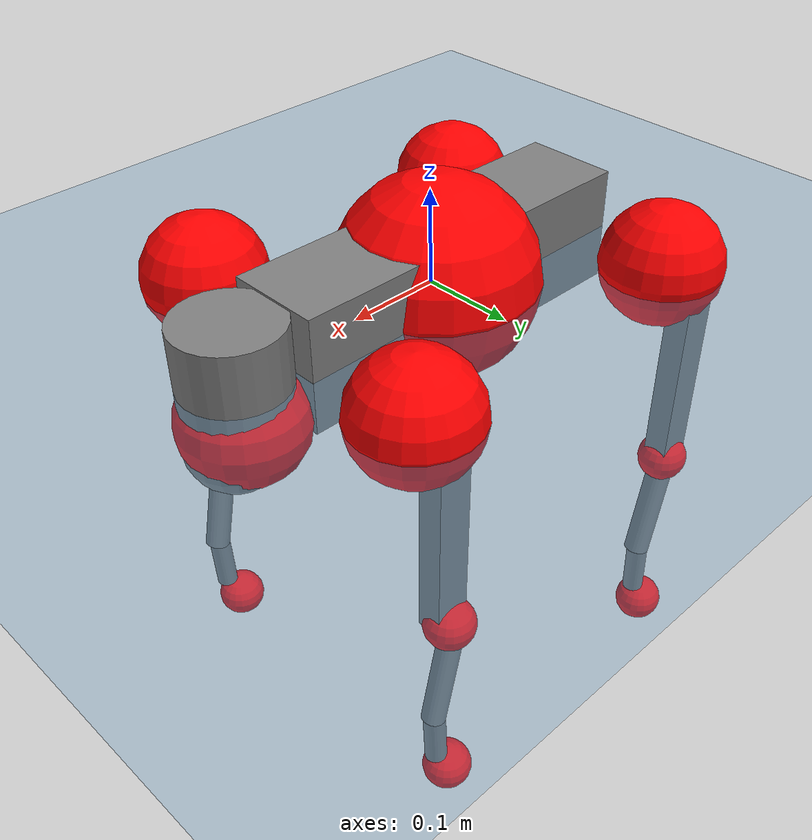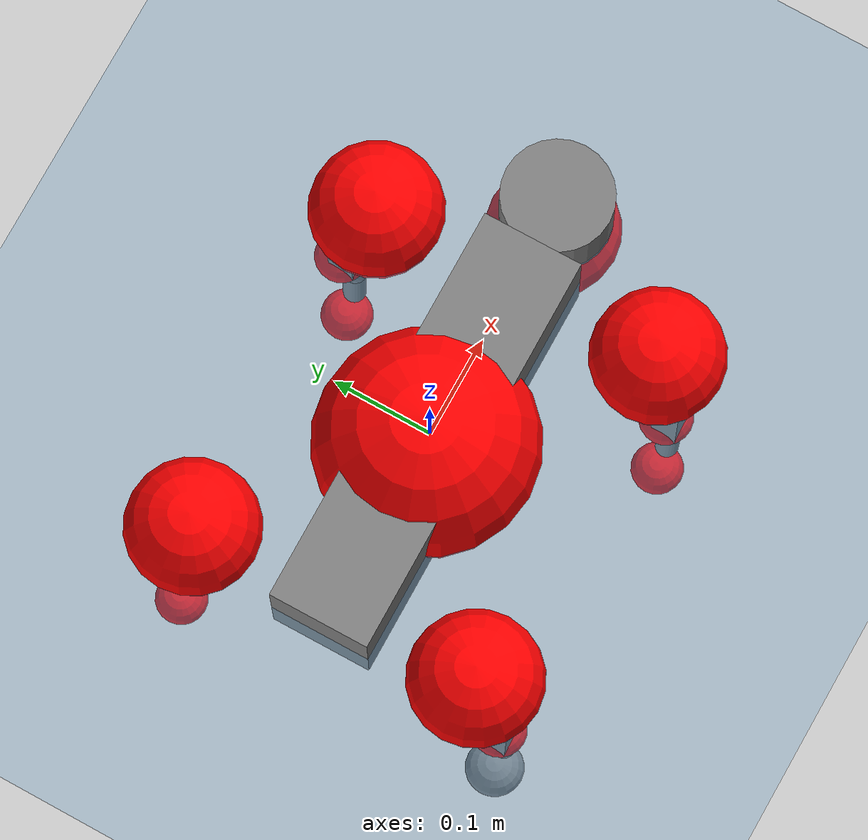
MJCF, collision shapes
<mujoco model="go2">
  <compiler angle="radian" assetdir="assets" balanceinertia="true" inertiafromgeom="false"/>

  <option timestep="0.005" density="1.2" viscosity="2e-05"/>

  <size nkey="1"/>

  <visual>
    <quality shadowsize="8192"/>
    <map shadowclip="0.5"/>
  </visual>

  <default>
    <default class="/">
      <geom contype="0" conaffinity="0" group="1" solref="-1000 -80"/>
      <site size="0.01 0.005 0.005" group="5"/>
      <general forcelimited="true" biastype="affine" gainprm="20" biasprm="0 -20 -0.5"/>
      <default class="go2">
        <joint armature="0.01" damping="0.01" frictionloss="0.2"/>
        <geom condim="1" margin="0.001"/>
        <default class="visual">
          <geom type="mesh" group="2"/>
        </default>
        <default class="collision">
          <geom group="3"/>
          <default class="foot">
            <geom size="0.022 0 0" condim="6" priority="1" friction="0.8 0.02 0.01" solimp="0.015 1 0.022"/>
          </default>
        </default>
        <default class="reward_collision_sphere">
          <geom group="5" rgba="1 0 0 1"/>
        </default>
      </default>
    </default>
  </default>

  <asset>
    <texture type="skybox" colorspace="auto" name="//unnamed_texture_0" builtin="gradient" rgb1="0.95 0.95 0.95" rgb2="0.95 0.95 0.95" width="100" height="600"/>
    <texture type="2d" colorspace="auto" name="texplane" builtin="checker" rgb1="0.345 0.575 0.748" rgb2="0.345 0.575 0.748" markrgb="1 1 1" width="512" height="512"/>
    <material name="MatPlane" class="/" texture="texplane" texuniform="true" texrepeat="2 2" specular="0.9"/>
    <material name="metal" class="/" rgba="0.9 0.95 0.95 1"/>
    <material name="black" class="/" rgba="0 0 0 1"/>
    <material name="white" class="/"/>
    <material name="gray" class="/" rgba="0.671705 0.692426 0.77427 1"/>
    <mesh name="base_0" class="/" file="base_0.obj"/>
    <mesh name="base_1" class="/" file="base_1.obj"/>
    <mesh name="base_2" class="/" file="base_2.obj"/>
    <mesh name="base_3" class="/" file="base_3.obj"/>
    <mesh name="base_4" class="/" file="base_4.obj"/>
    <mesh name="hip_0" class="/" file="hip_0.obj"/>
    <mesh name="hip_1" class="/" file="hip_1.obj"/>
    <mesh name="thigh_0" class="/" file="thigh_0.obj"/>
    <mesh name="thigh_1" class="/" file="thigh_1.obj"/>
    <mesh name="thigh_mirror_0" class="/" file="thigh_mirror_0.obj"/>
    <mesh name="thigh_mirror_1" class="/" file="thigh_mirror_1.obj"/>
    <mesh name="calf_0" class="/" file="calf_0.obj"/>
    <mesh name="calf_1" class="/" file="calf_1.obj"/>
    <mesh name="calf_mirror_0" class="/" file="calf_mirror_0.obj"/>
    <mesh name="calf_mirror_1" class="/" file="calf_mirror_1.obj"/>
    <mesh name="foot" class="/" file="foot.obj"/>
  </asset>

  <worldbody>
    <geom name="floor" class="/" size="100 100 0.125" type="plane" group="0" material="MatPlane"/>
    <light name="toplight_shadow" class="/" pos="0 0 5" dir="0.0990148 0.0990148 -0.990148" type="directional" ambient="0.04 0.04 0.04" diffuse="0.55 0.55 0.55" specular="0.12 0.12 0.12"/>
    <light name="toplight_fill" class="/" pos="0 0 5" dir="0.0990148 0.0990148 -0.990148" type="directional" castshadow="false" ambient="0.04 0.04 0.04" diffuse="0.3 0.3 0.3" specular="0.08 0.08 0.08"/>
    <body name="trunk" childclass="go2" pos="-0.00968559 -0.00203978 0.00229353" quat="0.999991 -0.00149761 -0.00338518 0.00183085">
      <inertial pos="0.0274556 -0.00189314 -0.00702829" quat="0.0034642 0.710131 -0.003168 0.704053" mass="9.49279" diaginertia="0.0537 0.314225 0.0354958"/>
      <joint name="//unnamed_joint_0" type="free" armature="0" damping="0" frictionloss="0"/>
      <geom name="//unnamed_geom_1" class="visual" material="black" mesh="base_0"/>
      <geom name="//unnamed_geom_2" class="visual" material="black" mesh="base_1"/>
      <geom name="//unnamed_geom_3" class="visual" material="black" mesh="base_2"/>
      <geom name="//unnamed_geom_4" class="visual" material="white" mesh="base_3"/>
      <geom name="//unnamed_geom_5" class="visual" material="gray" mesh="base_4"/>
      <geom name="trunk_1" class="collision" size="0.202198 0.0502538 0.061272" type="box"/>
      <geom name="trunk_2" class="collision" size="0.0537474 0.0483727" pos="0.249424 0 0.0108393" type="cylinder"/>
      <geom name="trunk_3" class="collision" size="0.0505225" pos="0.256425 0 -0.0650356"/>
      <geom name="//unnamed_geom_9" class="reward_collision_sphere" size="0.107495"/>
      <geom name="//unnamed_geom_10" class="reward_collision_sphere" size="0.0644969" pos="0.245048 0 -0.0487767"/>
      <site name="imu" pos="-0.0325215 -0.0157344 0.00675208" size="0.0107495"/>
      <camera name="track" pos="0 -2.53149 0" quat="0.707107 0.707107 0 0" mode="trackcom"/>
      <camera name="ego_camera" pos="0.273054 0 0.0487767" quat="-0.5 -0.5 0.5 0.5"/>
      <body name="FL_hip" pos="0.171749 0.0588669 -0.00179989" quat="0.999999 -0.000830873 -0.000600621 0.000157789">
        <inertial pos="-0.00365051 0.00781404 -0.00230096" quat="0.493352 0.50586 0.499785 0.500924" mass="0.875145" diaginertia="0.000402507 0.00188721 0.000716109"/>
        <joint name="FL_hip_joint" pos="0 0 0" axis="0.998857 0.0376578 -0.0294281" stiffness="0.00422942" range="-1.23163 1.00661" armature="0.0111003" damping="0" frictionloss="0.212955"/>
        <geom name="//unnamed_geom_11" class="visual" material="metal" mesh="hip_0"/>
        <geom name="//unnamed_geom_12" class="visual" material="gray" mesh="hip_1"/>
        <geom name="//unnamed_geom_13" class="collision" size="0.0494476 0.021499" pos="0 0.10126 0" quat="0.707107 0.707107 0 0" type="cylinder"/>
        <geom name="//unnamed_geom_14" class="reward_collision_sphere" size="0.0644969" pos="0 0.0886021 0"/>
        <body name="FL_thigh" pos="-0.00250432 0.12191 -0.00346695" quat="0.999994 -0.00245244 0.00245864 -3.66843e-05">
          <inertial pos="-0.0084136 -0.0239982 -0.02736" quat="0.829795 0.084745 -0.0209061 0.5512" mass="1.48716" diaginertia="0.00315503 0.0207559 0.00122534"/>
          <joint name="FL_thigh_joint" pos="0 0 0" axis="-0.00312055 0.999992 -0.00263305" stiffness="0.050267" range="-1.61096 3.51021" armature="0.0116921" damping="0.00559009" frictionloss="0.223195"/>
          <geom name="//unnamed_geom_15" class="visual" material="metal" mesh="thigh_0"/>
          <geom name="//unnamed_geom_16" class="visual" material="gray" mesh="thigh_1"/>
          <geom name="//unnamed_geom_17" class="collision" size="0.114482 0.0131681 0.0182741" pos="0 0 -0.115438" quat="0.707107 0 0.707107 0" type="box"/>
          <body name="FL_calf" pos="-0.00158595 0.00815656 -0.228265" quat="0.999998 -0.000526565 -0.000491264 -0.00190024">
            <inertial pos="0.0120117 -0.00130209 -0.157875" quat="0.712978 -0.00170601 3.52691e-05 0.701184" mass="0.294326" diaginertia="0.000699725 0.00393708 6.93839e-05"/>
            <joint name="FL_calf_joint" pos="0 0 0" axis="0.00220395 0.999997 -0.00129354" range="-2.56136 -0.794194" armature="0.00940586" damping="0.0402441" frictionloss="0.183902"/>
            <geom name="//unnamed_geom_18" class="visual" material="gray" mesh="calf_0"/>
            <geom name="//unnamed_geom_19" class="visual" material="black" mesh="calf_1"/>
            <geom name="FL_calf0" class="collision" size="0.0128994 0.0644969" pos="0.00700138 0 -0.0650356" quat="0.994493 0 -0.104807 0" type="cylinder"/>
            <geom name="//unnamed_geom_21" class="collision" size="0.0118244 0.0349358" pos="0.0175034 0 -0.160421" quat="0.999688 0 0.0249974 0" type="cylinder"/>
            <geom name="//unnamed_geom_22" class="visual" pos="0 0 -0.230876" quat="1 0 0 0" material="black" mesh="foot"/>
            <geom name="FL_foot" class="foot" size="0.0169548" pos="-0.00175034 0 -0.230876"/>
            <geom name="//unnamed_geom_24" class="reward_collision_sphere" size="0.0268737"/>
            <geom name="//unnamed_geom_25" class="reward_collision_sphere" size="0.0268737" pos="-0.00175034 0 -0.230876"/>
            <site name="FL_foot" class="foot" pos="-0.00175034 0 -0.230876" size="0.0107495"/>
          </body>
        </body>
      </body>
      <body name="FR_hip" pos="0.171709 -0.0593722 0.00848056" quat="0.999996 -0.00191788 -0.00214419 0.000784865">
        <inertial pos="-0.00753225 0.00496923 -0.000540671" quat="0.500092 0.525638 0.472759 0.500111" mass="0.855478" diaginertia="0.000505819 0.00201243 0.000788472"/>
        <joint name="FR_hip_joint" pos="0 0 0" axis="0.999899 -0.00851322 0.0114238" range="-1.06229 1.04" armature="0.0107195" damping="0.0226408" frictionloss="0.289182"/>
        <geom name="//unnamed_geom_26" class="visual" pos="0 1.58391e-09 6.79373e-08" quat="4.63268e-05 1 0 0" material="metal" mesh="hip_0"/>
        <geom name="//unnamed_geom_27" class="visual" pos="0 2.56771e-09 -1.68035e-07" quat="4.63268e-05 1 0 0" material="gray" mesh="hip_1"/>
        <geom name="//unnamed_geom_28" class="collision" size="0.0494476 0.021499" pos="0 -0.10126 0" quat="0.707107 0.707107 0 0" type="cylinder"/>
        <geom name="//unnamed_geom_29" class="reward_collision_sphere" size="0.0644969" pos="0 -0.0886021 0"/>
        <body name="FR_thigh" pos="0.000662822 -0.111473 -0.00280028" quat="0.999999 0.000825457 -0.000148429 -0.00104598">
          <inertial pos="-0.00651902 0.0339486 -0.0373403" quat="0.540806 -0.0269416 0.101826 0.834526" mass="1.40018" diaginertia="0.003069 0.0196755 0.001242"/>
          <joint name="FR_thigh_joint" pos="0 0 0" axis="-0.00197123 -0.999935 -0.011248" stiffness="0.0172083" range="-3.52877 1.4437" armature="0.0112031" damping="0.0100706" frictionloss="0.194419"/>
          <geom name="//unnamed_geom_30" class="visual" material="metal" mesh="thigh_mirror_0"/>
          <geom name="//unnamed_geom_31" class="visual" material="gray" mesh="thigh_mirror_1"/>
          <geom name="//unnamed_geom_32" class="collision" size="0.114482 0.0131681 0.0182741" pos="0 0 -0.115438" quat="0.707107 0 0.707107 0" type="box"/>
          <body name="FR_calf" pos="0.000534293 0.00612348 -0.230261" quat="1 -0.000143106 -0.000294343 0.000263946">
            <inertial pos="0.00532488 0.00288943 -0.151723" quat="0.722897 0.00583806 -0.0223796 0.690569" mass="0.290548" diaginertia="0.000765745 0.00471095 8.41389e-05"/>
            <joint name="FR_calf_joint" pos="0 0 0" axis="-0.0369496 -0.999072 0.0221411" stiffness="0.0376807" range="0.880472 2.62186" armature="0.0110289" damping="0" frictionloss="0.230361"/>
            <geom name="//unnamed_geom_33" class="visual" material="gray" mesh="calf_mirror_0"/>
            <geom name="//unnamed_geom_34" class="visual" material="black" mesh="calf_mirror_1"/>
            <geom name="FR_calf0" class="collision" size="0.0139743 0.0644969" pos="0.00875172 0 -0.0650356" quat="0.995004 0 -0.0998334 0" type="cylinder"/>
            <geom name="//unnamed_geom_36" class="collision" size="0.0118244 0.0349358" pos="0.0175034 0 -0.160421" quat="0.999688 0 0.0249974 0" type="cylinder"/>
            <geom name="//unnamed_geom_37" class="visual" pos="0 0 -0.230876" quat="1 0 0 0" material="black" mesh="foot"/>
            <geom name="FR_foot" class="foot" size="0.0245201" pos="-0.00175034 0 -0.230876"/>
            <geom name="//unnamed_geom_39" class="reward_collision_sphere" size="0.0268737"/>
            <geom name="//unnamed_geom_40" class="reward_collision_sphere" size="0.0268737" pos="-0.00175034 0 -0.230876"/>
            <site name="FR_foot" class="foot" pos="-0.00175034 0 -0.230876" size="0.0107495"/>
          </body>
        </body>
      </body>
      <body name="RL_hip" pos="-0.172618 0.0599262 0.00619662" quat="0.999999 0.000342941 -0.00107775 -0.000163086">
        <inertial pos="0.00345102 -0.00629476 0.00547336" quat="0.508997 0.491225 0.532601 0.464711" mass="0.761005" diaginertia="0.000470587 0.00191776 0.000654369"/>
        <joint name="RL_hip_joint" pos="0 0 0" axis="-0.999743 0.0219667 -0.00563779" range="-1.08177 1.11993" armature="0.0139325" damping="0.00498806" frictionloss="0.133288"/>
        <geom name="//unnamed_geom_41" class="visual" pos="1.81859e-09 0 3.56485e-07" quat="4.63268e-05 0 1 0" material="metal" mesh="hip_0"/>
        <geom name="//unnamed_geom_42" class="visual" pos="2.94815e-09 0 3.16151e-07" quat="4.63268e-05 0 1 0" material="gray" mesh="hip_1"/>
        <geom name="//unnamed_geom_43" class="collision" size="0.0494476 0.021499" pos="0 0.10126 0" quat="0.707107 0.707107 0 0" type="cylinder"/>
        <geom name="//unnamed_geom_44" class="reward_collision_sphere" size="0.0644969" pos="0 0.0886021 0"/>
        <body name="RL_thigh" pos="0.000759829 0.128167 -0.00748372" quat="1 -0.000652478 0.000476979 -0.000362641">
          <inertial pos="-0.00345691 -0.0279419 -0.0339432" quat="0.828013 0.0840132 -0.0233344 0.553888" mass="1.27546" diaginertia="0.00313522 0.0193575 0.00124499"/>
          <joint name="RL_thigh_joint" pos="0 0 0" axis="0.00375673 0.999807 -0.0192769" range="-0.487432 4.55732" armature="0.00792761" damping="0.0219011" frictionloss="0.211056"/>
          <geom name="//unnamed_geom_45" class="visual" material="metal" mesh="thigh_0"/>
          <geom name="//unnamed_geom_46" class="visual" material="gray" mesh="thigh_1"/>
          <geom name="//unnamed_geom_47" class="collision" size="0.114482 0.0131681 0.0182741" pos="0 0 -0.115438" quat="0.707107 0 0.707107 0" type="box"/>
          <body name="RL_calf" pos="0.000641557 8.19047e-05 -0.222413" quat="1 -0.000384409 0.000280608 0.000145085">
            <inertial pos="0.00633692 -0.0100344 -0.151365" quat="0.704346 -0.0101478 -0.00483885 0.709768" mass="0.296399" diaginertia="0.000789284 0.00483804 8.82011e-05"/>
            <joint name="RL_calf_joint" pos="0 0 0" axis="0.00694168 0.999925 0.0100667" stiffness="0.0494356" range="-2.70854 -0.878697" armature="0.00911743" damping="0.0302575" frictionloss="0.11859"/>
            <geom name="//unnamed_geom_48" class="visual" material="gray" mesh="calf_0"/>
            <geom name="//unnamed_geom_49" class="visual" material="black" mesh="calf_1"/>
            <geom name="RL_calf0" class="collision" size="0.0139743 0.0644969" pos="0.00875172 0 -0.0650356" quat="0.995004 0 -0.0998334 0" type="cylinder"/>
            <geom name="//unnamed_geom_51" class="collision" size="0.0118244 0.0349358" pos="0.0175034 0 -0.160421" quat="0.999688 0 0.0249974 0" type="cylinder"/>
            <geom name="//unnamed_geom_52" class="visual" pos="0 0 -0.230876" quat="1 0 0 0" material="black" mesh="foot"/>
            <geom name="RL_foot" class="foot" size="0.0260657" pos="-0.00175034 0 -0.230876"/>
            <geom name="//unnamed_geom_54" class="reward_collision_sphere" size="0.0268737"/>
            <geom name="//unnamed_geom_55" class="reward_collision_sphere" size="0.0268737" pos="-0.00175034 0 -0.230876"/>
            <site name="RL_foot" class="foot" pos="-0.00175034 0 -0.230876" size="0.0107495"/>
          </body>
        </body>
      </body>
      <body name="RR_hip" pos="-0.169926 -0.0560345 -0.00235834" quat="0.999991 0.00366593 0.00178139 -0.00147611">
        <inertial pos="-0.00432793 -0.00794851 0.00881135" quat="0.510797 0.479534 0.491966 0.51682" mass="0.834422" diaginertia="0.00044504 0.00188917 0.000698846"/>
        <joint name="RR_hip_joint" pos="0 0 0" axis="-0.998888 -0.00350014 0.0470233" range="-1.0631 1.07466" armature="0.0121007" damping="0.00163793" frictionloss="0.227557"/>
        <geom name="//unnamed_geom_56" class="visual" pos="-1.80506e-09 1.58391e-09 2.88547e-07" quat="2.14617e-09 4.63268e-05 4.63268e-05 -1" material="metal" mesh="hip_0"/>
        <geom name="//unnamed_geom_57" class="visual" pos="-2.98159e-09 2.56771e-09 4.84186e-07" quat="2.14617e-09 4.63268e-05 4.63268e-05 -1" material="gray" mesh="hip_1"/>
        <geom name="//unnamed_geom_58" class="collision" size="0.0494476 0.021499" pos="0 -0.10126 0" quat="0.707107 0.707107 0 0" type="cylinder"/>
        <geom name="//unnamed_geom_59" class="reward_collision_sphere" size="0.0644969" pos="0 -0.0886021 0"/>
        <body name="RR_thigh" pos="-2.25998e-05 -0.119582 0.00909037" quat="1 0.000667881 0.000256692 -4.88537e-05">
          <inertial pos="-0.00518705 0.0289749 -0.0358239" quat="0.550332 -0.015002 0.0861803 0.830351" mass="1.54936" diaginertia="0.00298664 0.0178561 0.00131058"/>
          <joint name="RR_thigh_joint" pos="0 0 0" axis="0.00777739 -0.999966 -0.00277629" range="-4.55252 0.382444" armature="0.00968036" damping="0.0104341" frictionloss="0.227263"/>
          <geom name="//unnamed_geom_60" class="visual" material="metal" mesh="thigh_mirror_0"/>
          <geom name="//unnamed_geom_61" class="visual" material="gray" mesh="thigh_mirror_1"/>
          <geom name="//unnamed_geom_62" class="collision" size="0.114482 0.0131681 0.0182741" pos="0 0 -0.115438" quat="0.707107 0 0.707107 0" type="box"/>
          <body name="RR_calf" pos="0.00240355 0.00330498 -0.233427" quat="1 0.000233716 -0.000867225 0.000369208">
            <inertial pos="0.0107863 0.00266163 -0.154378" quat="0.707166 -0.010806 -0.011687 0.706868" mass="0.292929" diaginertia="0.000756296 0.00486556 7.32736e-05"/>
            <joint name="RR_calf_joint" pos="0 0 0" axis="-0.0390399 -0.99921 0.00738068" range="0.85853 2.71391" armature="0.0107446" damping="0" frictionloss="0.212222"/>
            <geom name="//unnamed_geom_63" class="visual" material="gray" mesh="calf_mirror_0"/>
            <geom name="//unnamed_geom_64" class="visual" material="black" mesh="calf_mirror_1"/>
            <geom name="RR_calf0" class="collision" size="0.0139743 0.0644969" pos="0.00875172 0 -0.0650356" quat="0.995004 0 -0.0998334 0" type="cylinder"/>
            <geom name="//unnamed_geom_66" class="collision" size="0.0118244 0.0349358" pos="0.0175034 0 -0.160421" quat="0.999688 0 0.0249974 0" type="cylinder"/>
            <geom name="//unnamed_geom_67" class="visual" pos="0 0 -0.230876" quat="1 0 0 0" material="black" mesh="foot"/>
            <geom name="RR_foot" class="foot" size="0.0296095" pos="-0.00175034 0 -0.230876"/>
            <geom name="//unnamed_geom_69" class="reward_collision_sphere" size="0.0268737"/>
            <geom name="//unnamed_geom_70" class="reward_collision_sphere" size="0.0268737" pos="-0.00175034 0 -0.230876"/>
            <site name="RR_foot" class="foot" pos="-0.00175034 0 -0.230876" size="0.0107495"/>
          </body>
        </body>
      </body>
    </body>
  </worldbody>

  <contact>
    <pair class="/" geom1="floor" geom2="FL_foot" name="//unnamed_contact_0"/>
    <pair class="/" geom1="floor" geom2="FR_foot" name="//unnamed_contact_1"/>
    <pair class="/" geom1="floor" geom2="RL_foot" name="//unnamed_contact_2"/>
    <pair class="/" geom1="floor" geom2="RR_foot" name="//unnamed_contact_3"/>
  </contact>

  <actuator>
    <general name="FL_hip" class="/" joint="FL_hip_joint" forcerange="-26.1905 26.1905" gainprm="19.6376" biasprm="0 -19.6376 -0.603691"/>
    <general name="FL_thigh" class="/" joint="FL_thigh_joint" forcerange="-28.3297 28.3297" gainprm="19.6376" biasprm="0 -19.6376 -0.603691"/>
    <general name="FL_calf" class="/" joint="FL_calf_joint" forcerange="-45.3402 45.3402" gainprm="19.6376" biasprm="0 -19.6376 -0.603691"/>
    <general name="FR_hip" class="/" joint="FR_hip_joint" forcerange="-23.8161 23.8161" gainprm="19.6376" biasprm="0 -19.6376 -0.603691"/>
    <general name="FR_thigh" class="/" joint="FR_thigh_joint" forcerange="-22.7106 22.7106" gainprm="19.6376" biasprm="0 -19.6376 -0.603691"/>
    <general name="FR_calf" class="/" joint="FR_calf_joint" forcerange="-45.3505 45.3505" gainprm="19.6376" biasprm="0 -19.6376 -0.603691"/>
    <general name="RL_hip" class="/" joint="RL_hip_joint" forcerange="-17.1648 17.1648" gainprm="19.6376" biasprm="0 -19.6376 -0.603691"/>
    <general name="RL_thigh" class="/" joint="RL_thigh_joint" forcerange="-28.0006 28.0006" gainprm="19.6376" biasprm="0 -19.6376 -0.603691"/>
    <general name="RL_calf" class="/" joint="RL_calf_joint" forcerange="-64.7075 64.7075" gainprm="19.6376" biasprm="0 -19.6376 -0.603691"/>
    <general name="RR_hip" class="/" joint="RR_hip_joint" forcerange="-29.8622 29.8622" gainprm="19.6376" biasprm="0 -19.6376 -0.603691"/>
    <general name="RR_thigh" class="/" joint="RR_thigh_joint" forcerange="-17.5868 17.5868" gainprm="19.6376" biasprm="0 -19.6376 -0.603691"/>
    <general name="RR_calf" class="/" joint="RR_calf_joint" forcerange="-52.7901 52.7901" gainprm="19.6376" biasprm="0 -19.6376 -0.603691"/>
  </actuator>

  <sensor>
    <gyro site="imu" name="imu_angular_velocity"/>
    <velocimeter site="imu" name="imu_linear_velocity"/>
    <framelinvel objtype="site" objname="FL_foot" name="FL_foot_global_linear_velocity"/>
    <framelinvel objtype="site" objname="FR_foot" name="FR_foot_global_linear_velocity"/>
    <framelinvel objtype="site" objname="RL_foot" name="RL_foot_global_linear_velocity"/>
    <framelinvel objtype="site" objname="RR_foot" name="RR_foot_global_linear_velocity"/>
  </sensor>

  <keyframe>
    <key name="home" qpos="0 0 0.325 1 0 0 0 0.1 0.8 -1.5 -0.1 -0.8 1.5 -0.1 0.8 -1.5 0.1 -0.8 1.5"/>
  </keyframe>
</mujoco>
